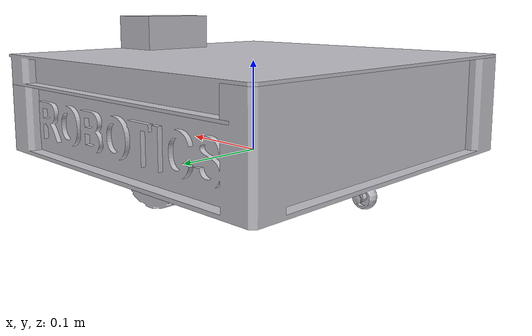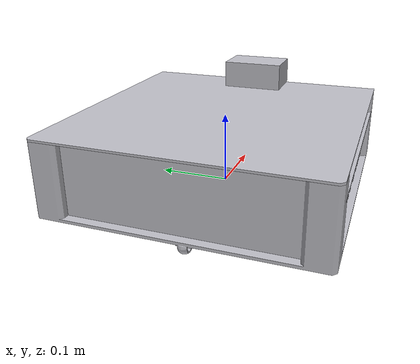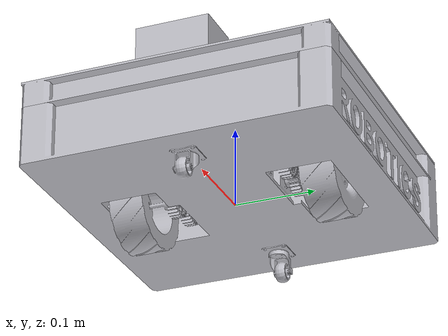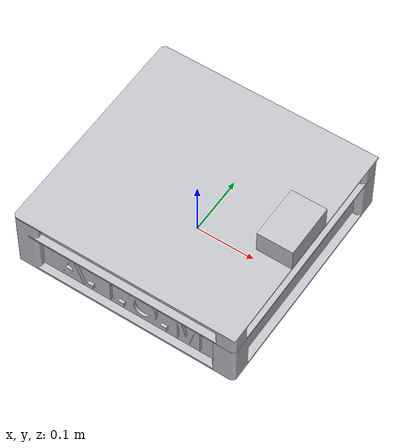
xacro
<?xml version="1.0" ?>
<robot name="mr_robot" xmlns:xacro="http://www.ros.org/wiki/xacro">

<xacro:include filename="$(find line_follower_omnidrive)/urdf/materials.xacro" />
<xacro:include filename="$(find line_follower_omnidrive)/urdf/mr_robot.trans" />
<xacro:include filename="$(find line_follower_omnidrive)/urdf/mr_robot.gazebo" />
<link name="base_link">
  <inertial>
    <origin xyz="-0.012857500854975256 0.0005455721615347615 0.028824396025250262" rpy="0 0 0"/>
    <mass value="12.937526815057787"/>
    <inertia ixx="0.242349" iyy="0.241904" izz="0.46442" ixy="-0.000954" iyz="-3e-05" ixz="0.009783"/>
  </inertial>
  <visual>
    <origin xyz="0 0 0" rpy="0 0 0"/>
    <geometry>
      <mesh filename="package://line_follower_omnidrive/models/robot/base_link.stl" scale="0.001 0.001 0.001"/>
    </geometry>
    <material name="silver"/>
  </visual>
  <collision>
    <origin xyz="0 0 0" rpy="0 0 0"/>
    <geometry>
      <mesh filename="package://line_follower_omnidrive/models/robot/base_link.stl" scale="0.001 0.001 0.001"/>
    </geometry>
  </collision>
</link>

<link name="upper_panel_1">
  <inertial>
    <origin xyz="-0.16981068116080172 0.18750361570760557 0.0184592808138061" rpy="0 0 0"/>
    <mass value="7.649753398983407"/>
    <inertia ixx="0.111429" iyy="0.097265" izz="0.205922" ixy="1.5e-05" iyz="-5e-06" ixz="0.001292"/>
  </inertial>
  <visual>
    <origin xyz="-0.187451 0.187549 -0.074" rpy="0 0 0"/>
    <geometry>
      <mesh filename="package://line_follower_omnidrive/models/robot/upper_panel_1.stl" scale="0.001 0.001 0.001"/>
    </geometry>
    <material name="silver"/>
  </visual>
  <collision>
    <origin xyz="-0.187451 0.187549 -0.074" rpy="0 0 0"/>
    <geometry>
      <mesh filename="package://line_follower_omnidrive/models/robot/upper_panel_1.stl" scale="0.001 0.001 0.001"/>
    </geometry>
  </collision>
</link>

<link name="camera_1">
  <inertial>
    <origin xyz="-0.029999999999996974 -1.7517142134785925e-15 0.02000000000000017" rpy="0 0 0"/>
    <mass value="1.6955999999999982"/>
    <inertia ixx="0.001371" iyy="0.000735" izz="0.001653" ixy="0.0" iyz="-0.0" ixz="0.0"/>
  </inertial>
  <visual>
    <origin xyz="-0.19 0.0 -0.107" rpy="0 0 0"/>
    <geometry>
      <mesh filename="package://line_follower_omnidrive/models/robot/camera_1.stl" scale="0.001 0.001 0.001"/>
    </geometry>
    <material name="silver"/>
  </visual>
  <collision>
    <origin xyz="-0.19 0.0 -0.107" rpy="0 0 0"/>
    <geometry>
      <mesh filename="package://line_follower_omnidrive/models/robot/camera_1.stl" scale="0.001 0.001 0.001"/>
    </geometry>
  </collision>
</link>

<link name="tyre_l_1">
  <inertial>
    <origin xyz="2.3726543324194618e-07 0.06299916512839865 -1.8640587008331155e-07" rpy="0 0 0"/>
    <mass value="2.070634674921048"/>
    <inertia ixx="0.002387" iyy="0.003841" izz="0.002387" ixy="0.0" iyz="-0.0" ixz="-0.0"/>
  </inertial>
  <visual>
    <origin xyz="-0.001209 -0.056886 -0.018723" rpy="0 0 0"/>
    <geometry>
      <mesh filename="package://line_follower_omnidrive/models/robot/tyre_l_1.stl" scale="0.001 0.001 0.001"/>
    </geometry>
    <material name="silver"/>
  </visual>
  <collision>
    <origin xyz="-0.001209 -0.056886 -0.018723" rpy="0 0 0"/>
    <geometry>
      <mesh filename="package://line_follower_omnidrive/models/robot/tyre_l_1.stl" scale="0.001 0.001 0.001"/>
    </geometry>
  </collision>
</link>

<link name="tyre_r_1">
  <inertial>
    <origin xyz="2.3717927835883242e-07 0.03603152317797827 -5.5835582282726115e-08" rpy="0 0 0"/>
    <mass value="2.070975067332098"/>
    <inertia ixx="0.00239" iyy="0.003841" izz="0.00239" ixy="-0.0" iyz="-0.0" ixz="0.0"/>
  </inertial>
  <visual>
    <origin xyz="-0.000109 0.150886 -0.018723" rpy="0 0 0"/>
    <geometry>
      <mesh filename="package://line_follower_omnidrive/models/robot/tyre_r_1.stl" scale="0.001 0.001 0.001"/>
    </geometry>
    <material name="silver"/>
  </visual>
  <collision>
    <origin xyz="-0.000109 0.150886 -0.018723" rpy="0 0 0"/>
    <geometry>
      <mesh filename="package://line_follower_omnidrive/models/robot/tyre_r_1.stl" scale="0.001 0.001 0.001"/>
    </geometry>
  </collision>
</link>

<joint name="Rigid_13" type="fixed">
  <origin xyz="0.187451 -0.187549 0.074" rpy="0 0 0"/>
  <parent link="base_link"/>
  <child link="upper_panel_1"/>
</joint>

<joint name="Rigid_31" type="fixed">
  <origin xyz="0.002549 0.187549 0.033" rpy="0 0 0"/>
  <parent link="upper_panel_1"/>
  <child link="camera_1"/>
</joint>

<joint name="Revolute_33" type="continuous">
  <origin xyz="0.001209 0.056886 0.018723" rpy="0 0 0"/>
  <parent link="base_link"/>
  <child link="tyre_l_1"/>
  <axis xyz="0.0 1.0 -0.0"/>
</joint>

<joint name="Revolute_34" type="continuous">
  <origin xyz="0.000109 -0.150886 0.018723" rpy="0 0 0"/>
  <parent link="base_link"/>
  <child link="tyre_r_1"/>
  <axis xyz="0.0 1.0 -0.0"/>
</joint>

</robot>

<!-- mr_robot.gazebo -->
<robot name="mr_robot" xmlns:xacro="http://www.ros.org/wiki/xacro" >

<xacro:property name="body_color" value="Gazebo/Silver" />

<gazebo>
  <plugin name="control" filename="libgazebo_ros_control.so"/>
</gazebo>
<gazebo reference="base_link">
  <material>${body_color}</material>
  <mu1>0.2</mu1>
  <mu2>0.2</mu2>
  <selfCollide>true</selfCollide>
  <gravity>true</gravity>
</gazebo>

<gazebo reference="upper_panel_1">
  <material>${body_color}</material>
  <mu1>0.2</mu1>
  <mu2>0.2</mu2>
  <selfCollide>true</selfCollide>
</gazebo>

<gazebo reference="camera_1">
  <material>${body_color}</material>
  <mu1>0.2</mu1>
  <mu2>0.2</mu2>
  <selfCollide>true</selfCollide>
</gazebo>

<gazebo reference="tyre_l_1">
  <material>${body_color}</material>
  <mu1>0.2</mu1>
  <mu2>0.2</mu2>
  <selfCollide>true</selfCollide>
</gazebo>

<gazebo reference="tyre_r_1">
  <material>${body_color}</material>
  <mu1>0.2</mu1>
  <mu2>0.2</mu2>
  <selfCollide>true</selfCollide>
</gazebo>

<gazebo>
  <plugin name="differential_drive_controller" filename="libgazebo_ros_diff_drive.so">

    <!-- Plugin update rate in Hz -->
    <updateRate>10</updateRate>

    <!-- Name of left joint, defaults to `left_joint` -->
    <leftJoint>Revolute_33</leftJoint>

    <!-- Name of right joint, defaults to `right_joint` -->
    <rightJoint>Revolute_34</rightJoint>

    <!-- The distance from the center of one wheel to the other, in meters, defaults to 0.34 m -->
    <wheelSeparation>0.199</wheelSeparation>

    <!-- Diameter of the wheels, in meters, defaults to 0.15 m -->
    <wheelDiameter>0.107</wheelDiameter>

    <!-- Wheel acceleration, in rad/s^2, defaults to 0.0 rad/s^2 -->
    <wheelAcceleration>1.0</wheelAcceleration>

    <!-- Maximum torque which the wheels can produce, in Nm, defaults to 5 Nm -->
    <wheelTorque>20</wheelTorque>

    <!-- Topic to receive geometry_msgs/Twist message commands, defaults to `cmd_vel` -->
    <commandTopic>cmd_vel</commandTopic>

    <!-- Topic to publish nav_msgs/Odometry messages, defaults to `odom` -->
    <odometryTopic>odom</odometryTopic>

    <!-- Odometry frame, defaults to `odom` -->
    <odometryFrame>odom</odometryFrame>

    <!-- Robot frame to calculate odometry from, defaults to `base_footprint` -->
    <robotBaseFrame>base_link</robotBaseFrame>

    <!-- Odometry source, 0 for ENCODER, 1 for WORLD, defaults to WORLD -->
    <odometrySource>1</odometrySource>

    <!-- Set to true to publish transforms for the wheel links, defaults to false -->
    <publishWheelTF>true</publishWheelTF>

    <!-- Set to true to publish transforms for the odometry, defaults to true -->
    <publishOdom>true</publishOdom>

    <!-- Set to true to publish sensor_msgs/JointState on /joint_states for the wheel joints, defaults to false -->
    <publishWheelJointState>true</publishWheelJointState>

    <!-- Set to true to swap right and left wheels, defaults to true -->
    <legacyMode>false</legacyMode>
  </plugin>
</gazebo>

<!-- camera -->
  <gazebo reference="camera_1">
    	<sensor type="camera" name="camera1">
      	<update_rate>30.0</update_rate>
      	<camera name="head">
        	<horizontal_fov>1.3962634</horizontal_fov>
        	<image>
         	<width>800</width>
          	<height>800</height>
          	<format>R8G8B8</format>
        	</image>
        	<clip>
          	<near>0.02</near>
          	<far>300</far>
        	</clip>
        	<noise>
          <type>gaussian</type>
          <!-- Noise is sampled independently per pixel on each frame.
               That pixel's noise value is added to each of its color
               channels, which at that point lie in the range [0,1]. -->
          <mean>0.0</mean>
          <stddev>0.007</stddev>
        </noise>
      </camera>
      <plugin name="camera_controller" filename="libgazebo_ros_camera.so">
        <alwaysOn>true</alwaysOn>
        <updateRate>0.0</updateRate>
        <cameraName>rrbot/camera1</cameraName>
        <imageTopicName>image_raw</imageTopicName>
        <cameraInfoTopicName>camera_info</cameraInfoTopicName>
        <frameName>camera_link</frameName>
        <hackBaseline>0.07</hackBaseline>
        <distortionK1>0.0</distortionK1>
        <distortionK2>0.0</distortionK2>
        <distortionK3>0.0</distortionK3>
        <distortionT1>0.0</distortionT1>
        <distortionT2>0.0</distortionT2>
      </plugin>
    </sensor>
  </gazebo>

  <!--Kinect Camera-->
  <gazebo reference="kinect_camera">
  <sensor name="kinect_camera" type="depth">
    <update_rate>20</update_rate>
    <camera>
      <horizontal_fov>1.047198</horizontal_fov>
      <image>
        <width>640</width>
        <height>480</height>
        <format>R8G8B8</format>
      </image>
      <clip>
        <near>0.05</near>
        <far>3</far>
      </clip>
    </camera>
    <plugin name="kinect_camera_controller" filename="libgazebo_ros_openni_kinect.so">
      <baseline>0.2</baseline>
      <alwaysOn>true</alwaysOn>
      <updateRate>1.0</updateRate>
      <cameraName>kinect_ir</cameraName>
      <imageTopicName>kinect/image_raw</imageTopicName>
      <cameraInfoTopicName>kinect/camera_info</cameraInfoTopicName>
      <depthImageTopicName>/kinect/depth/image_raw</depthImageTopicName>
      <depthImageInfoTopicName>/kinect/depth/camera_info</depthImageInfoTopicName>
      <pointCloudTopicName>/kinect/depth/points</pointCloudTopicName>
      <frameName>kinect_camera</frameName>
      <pointCloudCutoff>0.5</pointCloudCutoff>
      <pointCloudCutoffMax>3.0</pointCloudCutoffMax>
      <distortionK1>0.00000001</distortionK1>
      <distortionK2>0.00000001</distortionK2>
      <distortionK3>0.00000001</distortionK3>
      <distortionT1>0.00000001</distortionT1>
      <distortionT2>0.00000001</distortionT2>
      <CxPrime>0</CxPrime>
      <Cx>0</Cx>
      <Cy>0</Cy>
      <focalLength>0</focalLength>
      <hackBaseline>0</hackBaseline>
    </plugin>
  </sensor>
</gazebo>

</robot>
